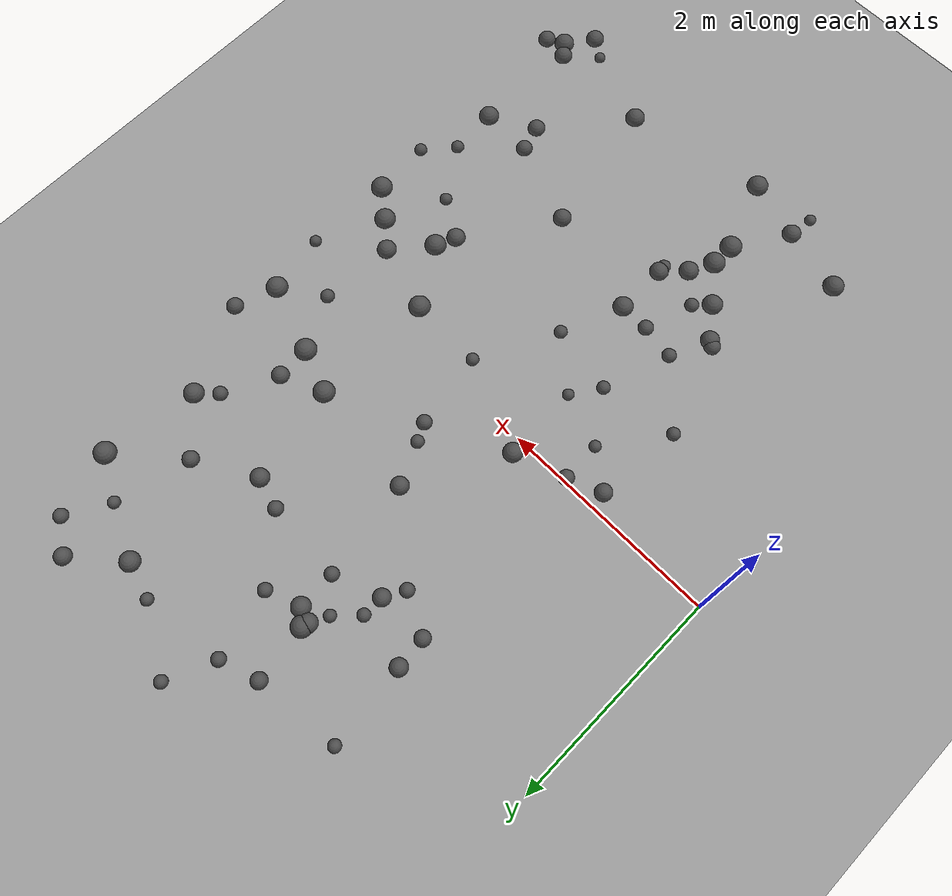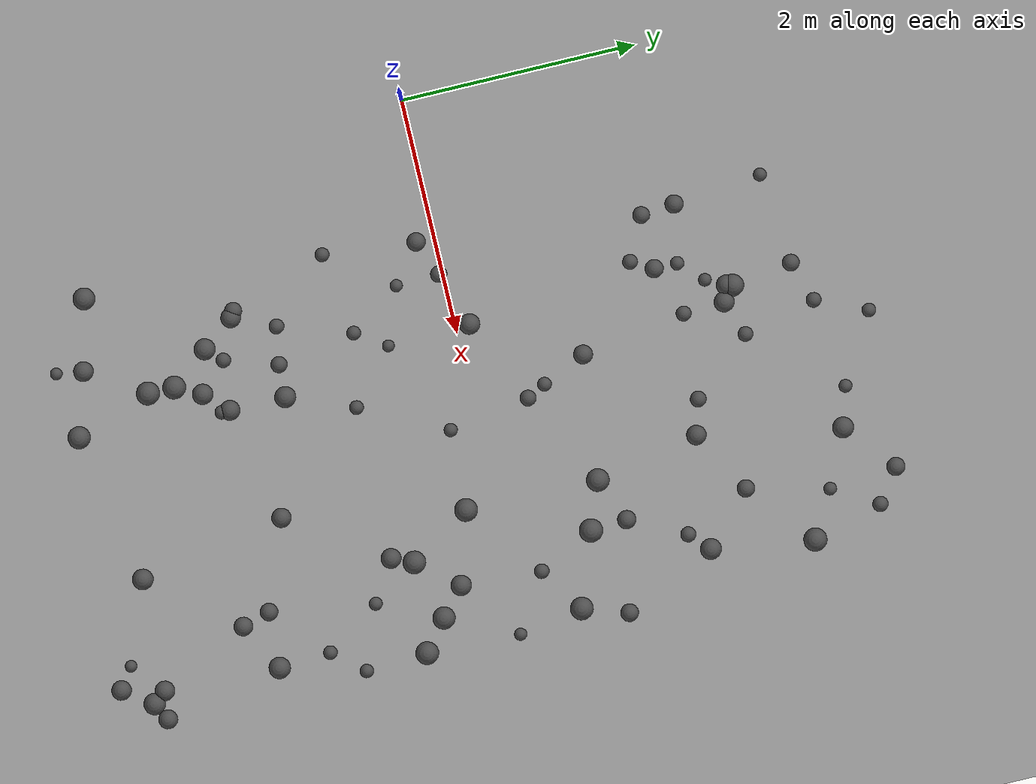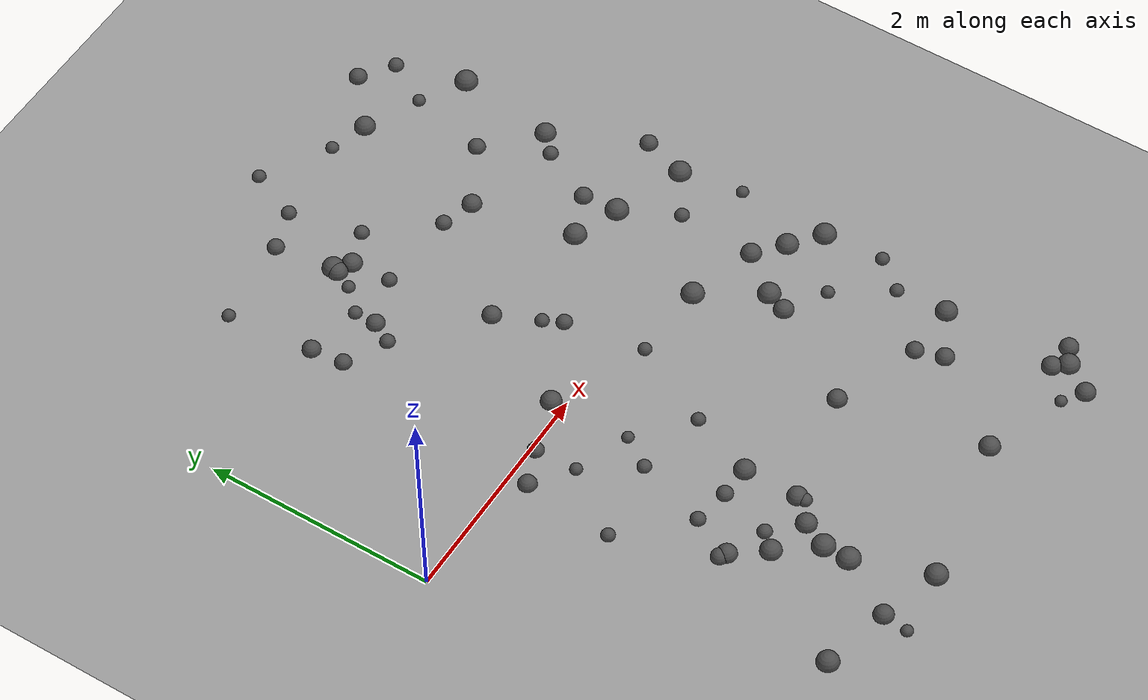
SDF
<sdf version="1.8">
 <world name="bumpy_world">
  <model name="ground_plane">
   <static>true</static>
   <link name="link">
    <collision name="collision">
     <geometry><plane><normal>0 0 1</normal><size>100 100</size></plane></geometry>
    </collision>
    <visual name="visual">
     <geometry><plane><normal>0 0 1</normal><size>100 100</size></plane></geometry>
     <material><ambient>0.6 0.6 0.6 1</ambient><diffuse>0.6 0.6 0.6 1</diffuse></material>
    </visual>
   </link>
  </model>
  <model name="bump_1">
   <static>true</static>
   <pose>4.375699444359473 -2.0842353457720866 0.0 0 0 0</pose>
   <link name="link">
    <collision name="collision">
     <geometry><sphere><radius>0.09185490365605613</radius></sphere></geometry>
     <surface><friction><ode><mu>100.0</mu><mu2>100.0</mu2></ode></friction></surface>
    </collision>
    <visual name="visual">
     <geometry><sphere><radius>0.09185490365605613</radius></sphere></geometry>
     <material><ambient>0.3 0.3 0.3 1</ambient><diffuse>0.3 0.3 0.3 1</diffuse></material>
    </visual>
   </link>
  </model>
  <model name="bump_7">
   <static>true</static>
   <pose>4.578840665991967 -3.0889073012254835 0.0 0 0 0</pose>
   <link name="link">
    <collision name="collision">
     <geometry><sphere><radius>0.08110118816827837</radius></sphere></geometry>
     <surface><friction><ode><mu>100.0</mu><mu2>100.0</mu2></ode></friction></surface>
    </collision>
    <visual name="visual">
     <geometry><sphere><radius>0.08110118816827837</radius></sphere></geometry>
     <material><ambient>0.3 0.3 0.3 1</ambient><diffuse>0.3 0.3 0.3 1</diffuse></material>
    </visual>
   </link>
  </model>
  <model name="bump_11">
   <static>true</static>
   <pose>2.9970924430199055 1.83390502286999 0.0 0 0 0</pose>
   <link name="link">
    <collision name="collision">
     <geometry><sphere><radius>0.06836493312915833</radius></sphere></geometry>
     <surface><friction><ode><mu>100.0</mu><mu2>100.0</mu2></ode></friction></surface>
    </collision>
    <visual name="visual">
     <geometry><sphere><radius>0.06836493312915833</radius></sphere></geometry>
     <material><ambient>0.3 0.3 0.3 1</ambient><diffuse>0.3 0.3 0.3 1</diffuse></material>
    </visual>
   </link>
  </model>
  <model name="bump_13">
   <static>true</static>
   <pose>4.428357708878181 -3.169123840835509 0.0 0 0 0</pose>
   <link name="link">
    <collision name="collision">
     <geometry><sphere><radius>0.09192973632237827</radius></sphere></geometry>
     <surface><friction><ode><mu>100.0</mu><mu2>100.0</mu2></ode></friction></surface>
    </collision>
    <visual name="visual">
     <geometry><sphere><radius>0.09192973632237827</radius></sphere></geometry>
     <material><ambient>0.3 0.3 0.3 1</ambient><diffuse>0.3 0.3 0.3 1</diffuse></material>
    </visual>
   </link>
  </model>
  <model name="bump_15">
   <static>true</static>
   <pose>2.5594423021961528 2.342710506935444 0.0 0 0 0</pose>
   <link name="link">
    <collision name="collision">
     <geometry><sphere><radius>0.06365721138681198</radius></sphere></geometry>
     <surface><friction><ode><mu>100.0</mu><mu2>100.0</mu2></ode></friction></surface>
    </collision>
    <visual name="visual">
     <geometry><sphere><radius>0.06365721138681198</radius></sphere></geometry>
     <material><ambient>0.3 0.3 0.3 1</ambient><diffuse>0.3 0.3 0.3 1</diffuse></material>
    </visual>
   </link>
  </model>
  <model name="bump_17">
   <static>true</static>
   <pose>3.4514245521246463 -0.26661385392774495 0.0 0 0 0</pose>
   <link name="link">
    <collision name="collision">
     <geometry><sphere><radius>0.09747261459395384</radius></sphere></geometry>
     <surface><friction><ode><mu>100.0</mu><mu2>100.0</mu2></ode></friction></surface>
    </collision>
    <visual name="visual">
     <geometry><sphere><radius>0.09747261459395384</radius></sphere></geometry>
     <material><ambient>0.3 0.3 0.3 1</ambient><diffuse>0.3 0.3 0.3 1</diffuse></material>
    </visual>
   </link>
  </model>
  <model name="bump_19">
   <static>true</static>
   <pose>3.1600458979560577 -1.781941884311565 0.0 0 0 0</pose>
   <link name="link">
    <collision name="collision">
     <geometry><sphere><radius>0.08271994072516169</radius></sphere></geometry>
     <surface><friction><ode><mu>100.0</mu><mu2>100.0</mu2></ode></friction></surface>
    </collision>
    <visual name="visual">
     <geometry><sphere><radius>0.08271994072516169</radius></sphere></geometry>
     <material><ambient>0.3 0.3 0.3 1</ambient><diffuse>0.3 0.3 0.3 1</diffuse></material>
    </visual>
   </link>
  </model>
  <model name="bump_20">
   <static>true</static>
   <pose>4.474462683840456 0.4849099776785515 0.0 0 0 0</pose>
   <link name="link">
    <collision name="collision">
     <geometry><sphere><radius>0.0968737511445553</radius></sphere></geometry>
     <surface><friction><ode><mu>100.0</mu><mu2>100.0</mu2></ode></friction></surface>
    </collision>
    <visual name="visual">
     <geometry><sphere><radius>0.0968737511445553</radius></sphere></geometry>
     <material><ambient>0.3 0.3 0.3 1</ambient><diffuse>0.3 0.3 0.3 1</diffuse></material>
    </visual>
   </link>
  </model>
  <model name="bump_28">
   <static>true</static>
   <pose>2.6015680022302448 3.391294897895473 0.0 0 0 0</pose>
   <link name="link">
    <collision name="collision">
     <geometry><sphere><radius>0.058801889831425466</radius></sphere></geometry>
     <surface><friction><ode><mu>100.0</mu><mu2>100.0</mu2></ode></friction></surface>
    </collision>
    <visual name="visual">
     <geometry><sphere><radius>0.058801889831425466</radius></sphere></geometry>
     <material><ambient>0.3 0.3 0.3 1</ambient><diffuse>0.3 0.3 0.3 1</diffuse></material>
    </visual>
   </link>
  </model>
  <model name="bump_33">
   <static>true</static>
   <pose>3.77704697894142 -0.7873846618750808 0.0 0 0 0</pose>
   <link name="link">
    <collision name="collision">
     <geometry><sphere><radius>0.09693993984139813</radius></sphere></geometry>
     <surface><friction><ode><mu>100.0</mu><mu2>100.0</mu2></ode></friction></surface>
    </collision>
    <visual name="visual">
     <geometry><sphere><radius>0.09693993984139813</radius></sphere></geometry>
     <material><ambient>0.3 0.3 0.3 1</ambient><diffuse>0.3 0.3 0.3 1</diffuse></material>
    </visual>
   </link>
  </model>
  <model name="bump_45">
   <static>true</static>
   <pose>4.539434740777375 -0.8569614264850611 0.0 0 0 0</pose>
   <link name="link">
    <collision name="collision">
     <geometry><sphere><radius>0.09726638559245274</radius></sphere></geometry>
     <surface><friction><ode><mu>100.0</mu><mu2>100.0</mu2></ode></friction></surface>
    </collision>
    <visual name="visual">
     <geometry><sphere><radius>0.09726638559245274</radius></sphere></geometry>
     <material><ambient>0.3 0.3 0.3 1</ambient><diffuse>0.3 0.3 0.3 1</diffuse></material>
    </visual>
   </link>
  </model>
  <model name="bump_50">
   <static>true</static>
   <pose>3.858306326417391 0.7095792104071936 0.0 0 0 0</pose>
   <link name="link">
    <collision name="collision">
     <geometry><sphere><radius>0.09963918217281403</radius></sphere></geometry>
     <surface><friction><ode><mu>100.0</mu><mu2>100.0</mu2></ode></friction></surface>
    </collision>
    <visual name="visual">
     <geometry><sphere><radius>0.09963918217281403</radius></sphere></geometry>
     <material><ambient>0.3 0.3 0.3 1</ambient><diffuse>0.3 0.3 0.3 1</diffuse></material>
    </visual>
   </link>
  </model>
  <model name="bump_52">
   <static>true</static>
   <pose>1.7689268516161496 -1.9510097502811679 0.0 0 0 0</pose>
   <link name="link">
    <collision name="collision">
     <geometry><sphere><radius>0.06264346534399169</radius></sphere></geometry>
     <surface><friction><ode><mu>100.0</mu><mu2>100.0</mu2></ode></friction></surface>
    </collision>
    <visual name="visual">
     <geometry><sphere><radius>0.06264346534399169</radius></sphere></geometry>
     <material><ambient>0.3 0.3 0.3 1</ambient><diffuse>0.3 0.3 0.3 1</diffuse></material>
    </visual>
   </link>
  </model>
  <model name="bump_53">
   <static>true</static>
   <pose>4.254398319180079 -3.412807127269019 0.0 0 0 0</pose>
   <link name="link">
    <collision name="collision">
     <geometry><sphere><radius>0.08389991183557605</radius></sphere></geometry>
     <surface><friction><ode><mu>100.0</mu><mu2>100.0</mu2></ode></friction></surface>
    </collision>
    <visual name="visual">
     <geometry><sphere><radius>0.08389991183557605</radius></sphere></geometry>
     <material><ambient>0.3 0.3 0.3 1</ambient><diffuse>0.3 0.3 0.3 1</diffuse></material>
    </visual>
   </link>
  </model>
  <model name="bump_61">
   <static>true</static>
   <pose>2.1240586659767433 2.2813314408419876 0.0 0 0 0</pose>
   <link name="link">
    <collision name="collision">
     <geometry><sphere><radius>0.08591172824293025</radius></sphere></geometry>
     <surface><friction><ode><mu>100.0</mu><mu2>100.0</mu2></ode></friction></surface>
    </collision>
    <visual name="visual">
     <geometry><sphere><radius>0.08591172824293025</radius></sphere></geometry>
     <material><ambient>0.3 0.3 0.3 1</ambient><diffuse>0.3 0.3 0.3 1</diffuse></material>
    </visual>
   </link>
  </model>
  <model name="bump_68">
   <static>true</static>
   <pose>1.895110308128082 -2.402694578252322 0.0 0 0 0</pose>
   <link name="link">
    <collision name="collision">
     <geometry><sphere><radius>0.09760392777575799</radius></sphere></geometry>
     <surface><friction><ode><mu>100.0</mu><mu2>100.0</mu2></ode></friction></surface>
    </collision>
    <visual name="visual">
     <geometry><sphere><radius>0.09760392777575799</radius></sphere></geometry>
     <material><ambient>0.3 0.3 0.3 1</ambient><diffuse>0.3 0.3 0.3 1</diffuse></material>
    </visual>
   </link>
  </model>
  <model name="bump_70">
   <static>true</static>
   <pose>1.1779168991081241 -0.15720439532591568 0.0 0 0 0</pose>
   <link name="link">
    <collision name="collision">
     <geometry><sphere><radius>0.07890660736814643</radius></sphere></geometry>
     <surface><friction><ode><mu>100.0</mu><mu2>100.0</mu2></ode></friction></surface>
    </collision>
    <visual name="visual">
     <geometry><sphere><radius>0.07890660736814643</radius></sphere></geometry>
     <material><ambient>0.3 0.3 0.3 1</ambient><diffuse>0.3 0.3 0.3 1</diffuse></material>
    </visual>
   </link>
  </model>
  <model name="bump_77">
   <static>true</static>
   <pose>1.3862601269019228 -1.7770314376125618 0.0 0 0 0</pose>
   <link name="link">
    <collision name="collision">
     <geometry><sphere><radius>0.07340652317562843</radius></sphere></geometry>
     <surface><friction><ode><mu>100.0</mu><mu2>100.0</mu2></ode></friction></surface>
    </collision>
    <visual name="visual">
     <geometry><sphere><radius>0.07340652317562843</radius></sphere></geometry>
     <material><ambient>0.3 0.3 0.3 1</ambient><diffuse>0.3 0.3 0.3 1</diffuse></material>
    </visual>
   </link>
  </model>
  <model name="bump_89">
   <static>true</static>
   <pose>1.0021155987069834 -2.9658817439445664 0.0 0 0 0</pose>
   <link name="link">
    <collision name="collision">
     <geometry><sphere><radius>0.09338512108883554</radius></sphere></geometry>
     <surface><friction><ode><mu>100.0</mu><mu2>100.0</mu2></ode></friction></surface>
    </collision>
    <visual name="visual">
     <geometry><sphere><radius>0.09338512108883554</radius></sphere></geometry>
     <material><ambient>0.3 0.3 0.3 1</ambient><diffuse>0.3 0.3 0.3 1</diffuse></material>
    </visual>
   </link>
  </model>
  <model name="bump_91">
   <static>true</static>
   <pose>3.2856701817967826 1.7495291228224845 0.0 0 0 0</pose>
   <link name="link">
    <collision name="collision">
     <geometry><sphere><radius>0.0839283965818422</radius></sphere></geometry>
     <surface><friction><ode><mu>100.0</mu><mu2>100.0</mu2></ode></friction></surface>
    </collision>
    <visual name="visual">
     <geometry><sphere><radius>0.0839283965818422</radius></sphere></geometry>
     <material><ambient>0.3 0.3 0.3 1</ambient><diffuse>0.3 0.3 0.3 1</diffuse></material>
    </visual>
   </link>
  </model>
  <model name="bump_92">
   <static>true</static>
   <pose>4.076697194514218 1.4930609313248215 0.0 0 0 0</pose>
   <link name="link">
    <collision name="collision">
     <geometry><sphere><radius>0.06502122167447753</radius></sphere></geometry>
     <surface><friction><ode><mu>100.0</mu><mu2>100.0</mu2></ode></friction></surface>
    </collision>
    <visual name="visual">
     <geometry><sphere><radius>0.06502122167447753</radius></sphere></geometry>
     <material><ambient>0.3 0.3 0.3 1</ambient><diffuse>0.3 0.3 0.3 1</diffuse></material>
    </visual>
   </link>
  </model>
  <model name="bump_93">
   <static>true</static>
   <pose>1.6432416634728013 -2.081651068460677 0.0 0 0 0</pose>
   <link name="link">
    <collision name="collision">
     <geometry><sphere><radius>0.09039176193333547</radius></sphere></geometry>
     <surface><friction><ode><mu>100.0</mu><mu2>100.0</mu2></ode></friction></surface>
    </collision>
    <visual name="visual">
     <geometry><sphere><radius>0.09039176193333547</radius></sphere></geometry>
     <material><ambient>0.3 0.3 0.3 1</ambient><diffuse>0.3 0.3 0.3 1</diffuse></material>
    </visual>
   </link>
  </model>
  <model name="bump_96">
   <static>true</static>
   <pose>3.924195391363507 3.310118237415325 0.0 0 0 0</pose>
   <link name="link">
    <collision name="collision">
     <geometry><sphere><radius>0.07738742257550393</radius></sphere></geometry>
     <surface><friction><ode><mu>100.0</mu><mu2>100.0</mu2></ode></friction></surface>
    </collision>
    <visual name="visual">
     <geometry><sphere><radius>0.07738742257550393</radius></sphere></geometry>
     <material><ambient>0.3 0.3 0.3 1</ambient><diffuse>0.3 0.3 0.3 1</diffuse></material>
    </visual>
   </link>
  </model>
  <model name="bump_106">
   <static>true</static>
   <pose>1.4957432243539166 -0.4024424237970363 0.0 0 0 0</pose>
   <link name="link">
    <collision name="collision">
     <geometry><sphere><radius>0.05353937410705956</radius></sphere></geometry>
     <surface><friction><ode><mu>100.0</mu><mu2>100.0</mu2></ode></friction></surface>
    </collision>
    <visual name="visual">
     <geometry><sphere><radius>0.05353937410705956</radius></sphere></geometry>
     <material><ambient>0.3 0.3 0.3 1</ambient><diffuse>0.3 0.3 0.3 1</diffuse></material>
    </visual>
   </link>
  </model>
  <model name="bump_110">
   <static>true</static>
   <pose>4.286193023977032 -0.6532370426727709 0.0 0 0 0</pose>
   <link name="link">
    <collision name="collision">
     <geometry><sphere><radius>0.0952368700019625</radius></sphere></geometry>
     <surface><friction><ode><mu>100.0</mu><mu2>100.0</mu2></ode></friction></surface>
    </collision>
    <visual name="visual">
     <geometry><sphere><radius>0.0952368700019625</radius></sphere></geometry>
     <material><ambient>0.3 0.3 0.3 1</ambient><diffuse>0.3 0.3 0.3 1</diffuse></material>
    </visual>
   </link>
  </model>
  <model name="bump_111">
   <static>true</static>
   <pose>3.700664339047383 -0.9688204387759534 0.0 0 0 0</pose>
   <link name="link">
    <collision name="collision">
     <geometry><sphere><radius>0.08506161954053865</radius></sphere></geometry>
     <surface><friction><ode><mu>100.0</mu><mu2>100.0</mu2></ode></friction></surface>
    </collision>
    <visual name="visual">
     <geometry><sphere><radius>0.08506161954053865</radius></sphere></geometry>
     <material><ambient>0.3 0.3 0.3 1</ambient><diffuse>0.3 0.3 0.3 1</diffuse></material>
    </visual>
   </link>
  </model>
  <model name="bump_112">
   <static>true</static>
   <pose>3.8380158701605858 1.020428659809773 0.0 0 0 0</pose>
   <link name="link">
    <collision name="collision">
     <geometry><sphere><radius>0.07877720319006354</radius></sphere></geometry>
     <surface><friction><ode><mu>100.0</mu><mu2>100.0</mu2></ode></friction></surface>
    </collision>
    <visual name="visual">
     <geometry><sphere><radius>0.07877720319006354</radius></sphere></geometry>
     <material><ambient>0.3 0.3 0.3 1</ambient><diffuse>0.3 0.3 0.3 1</diffuse></material>
    </visual>
   </link>
  </model>
  <model name="bump_117">
   <static>true</static>
   <pose>2.004968903910231 -2.183889137007635 0.0 0 0 0</pose>
   <link name="link">
    <collision name="collision">
     <geometry><sphere><radius>0.08747017050530548</radius></sphere></geometry>
     <surface><friction><ode><mu>100.0</mu><mu2>100.0</mu2></ode></friction></surface>
    </collision>
    <visual name="visual">
     <geometry><sphere><radius>0.08747017050530548</radius></sphere></geometry>
     <material><ambient>0.3 0.3 0.3 1</ambient><diffuse>0.3 0.3 0.3 1</diffuse></material>
    </visual>
   </link>
  </model>
  <model name="bump_120">
   <static>true</static>
   <pose>1.5583464712921327 -3.3345063218413413 0.0 0 0 0</pose>
   <link name="link">
    <collision name="collision">
     <geometry><sphere><radius>0.05113216974689665</radius></sphere></geometry>
     <surface><friction><ode><mu>100.0</mu><mu2>100.0</mu2></ode></friction></surface>
    </collision>
    <visual name="visual">
     <geometry><sphere><radius>0.05113216974689665</radius></sphere></geometry>
     <material><ambient>0.3 0.3 0.3 1</ambient><diffuse>0.3 0.3 0.3 1</diffuse></material>
    </visual>
   </link>
  </model>
  <model name="bump_122">
   <static>true</static>
   <pose>1.4388011884753715 -1.8104549754337258 0.0 0 0 0</pose>
   <link name="link">
    <collision name="collision">
     <geometry><sphere><radius>0.08423392261380672</radius></sphere></geometry>
     <surface><friction><ode><mu>100.0</mu><mu2>100.0</mu2></ode></friction></surface>
    </collision>
    <visual name="visual">
     <geometry><sphere><radius>0.08423392261380672</radius></sphere></geometry>
     <material><ambient>0.3 0.3 0.3 1</ambient><diffuse>0.3 0.3 0.3 1</diffuse></material>
    </visual>
   </link>
  </model>
  <model name="bump_125">
   <static>true</static>
   <pose>3.461714171851522 0.8616076185449426 0.0 0 0 0</pose>
   <link name="link">
    <collision name="collision">
     <geometry><sphere><radius>0.09703947010925909</radius></sphere></geometry>
     <surface><friction><ode><mu>100.0</mu><mu2>100.0</mu2></ode></friction></surface>
    </collision>
    <visual name="visual">
     <geometry><sphere><radius>0.09703947010925909</radius></sphere></geometry>
     <material><ambient>0.3 0.3 0.3 1</ambient><diffuse>0.3 0.3 0.3 1</diffuse></material>
    </visual>
   </link>
  </model>
  <model name="bump_128">
   <static>true</static>
   <pose>2.5806657441793446 0.6127622393420067 0.0 0 0 0</pose>
   <link name="link">
    <collision name="collision">
     <geometry><sphere><radius>0.059684126076175514</radius></sphere></geometry>
     <surface><friction><ode><mu>100.0</mu><mu2>100.0</mu2></ode></friction></surface>
    </collision>
    <visual name="visual">
     <geometry><sphere><radius>0.059684126076175514</radius></sphere></geometry>
     <material><ambient>0.3 0.3 0.3 1</ambient><diffuse>0.3 0.3 0.3 1</diffuse></material>
    </visual>
   </link>
  </model>
  <model name="bump_131">
   <static>true</static>
   <pose>4.039163697475373 -1.180683140473001 0.0 0 0 0</pose>
   <link name="link">
    <collision name="collision">
     <geometry><sphere><radius>0.05633555211848901</radius></sphere></geometry>
     <surface><friction><ode><mu>100.0</mu><mu2>100.0</mu2></ode></friction></surface>
    </collision>
    <visual name="visual">
     <geometry><sphere><radius>0.05633555211848901</radius></sphere></geometry>
     <material><ambient>0.3 0.3 0.3 1</ambient><diffuse>0.3 0.3 0.3 1</diffuse></material>
    </visual>
   </link>
  </model>
  <model name="bump_138">
   <static>true</static>
   <pose>4.348922720831991 -1.6428241987065857 0.0 0 0 0</pose>
   <link name="link">
    <collision name="collision">
     <geometry><sphere><radius>0.059049114572111504</radius></sphere></geometry>
     <surface><friction><ode><mu>100.0</mu><mu2>100.0</mu2></ode></friction></surface>
    </collision>
    <visual name="visual">
     <geometry><sphere><radius>0.059049114572111504</radius></sphere></geometry>
     <material><ambient>0.3 0.3 0.3 1</ambient><diffuse>0.3 0.3 0.3 1</diffuse></material>
    </visual>
   </link>
  </model>
  <model name="bump_150">
   <static>true</static>
   <pose>2.4132175010626975 2.9622652706319617 0.0 0 0 0</pose>
   <link name="link">
    <collision name="collision">
     <geometry><sphere><radius>0.06385747610882556</radius></sphere></geometry>
     <surface><friction><ode><mu>100.0</mu><mu2>100.0</mu2></ode></friction></surface>
    </collision>
    <visual name="visual">
     <geometry><sphere><radius>0.06385747610882556</radius></sphere></geometry>
     <material><ambient>0.3 0.3 0.3 1</ambient><diffuse>0.3 0.3 0.3 1</diffuse></material>
    </visual>
   </link>
  </model>
  <model name="bump_154">
   <static>true</static>
   <pose>4.568136714132531 -1.3819790478039544 0.0 0 0 0</pose>
   <link name="link">
    <collision name="collision">
     <geometry><sphere><radius>0.058123281968035685</radius></sphere></geometry>
     <surface><friction><ode><mu>100.0</mu><mu2>100.0</mu2></ode></friction></surface>
    </collision>
    <visual name="visual">
     <geometry><sphere><radius>0.058123281968035685</radius></sphere></geometry>
     <material><ambient>0.3 0.3 0.3 1</ambient><diffuse>0.3 0.3 0.3 1</diffuse></material>
    </visual>
   </link>
  </model>
  <model name="bump_155">
   <static>true</static>
   <pose>4.199464133943113 3.112736147962802 0.0 0 0 0</pose>
   <link name="link">
    <collision name="collision">
     <geometry><sphere><radius>0.06563378905503567</radius></sphere></geometry>
     <surface><friction><ode><mu>100.0</mu><mu2>100.0</mu2></ode></friction></surface>
    </collision>
    <visual name="visual">
     <geometry><sphere><radius>0.06563378905503567</radius></sphere></geometry>
     <material><ambient>0.3 0.3 0.3 1</ambient><diffuse>0.3 0.3 0.3 1</diffuse></material>
    </visual>
   </link>
  </model>
  <model name="bump_167">
   <static>true</static>
   <pose>2.4129315126376136 0.9834948914557646 0.0 0 0 0</pose>
   <link name="link">
    <collision name="collision">
     <geometry><sphere><radius>0.08116782528962042</radius></sphere></geometry>
     <surface><friction><ode><mu>100.0</mu><mu2>100.0</mu2></ode></friction></surface>
    </collision>
    <visual name="visual">
     <geometry><sphere><radius>0.08116782528962042</radius></sphere></geometry>
     <material><ambient>0.3 0.3 0.3 1</ambient><diffuse>0.3 0.3 0.3 1</diffuse></material>
    </visual>
   </link>
  </model>
  <model name="bump_175">
   <static>true</static>
   <pose>3.969476179154804 -2.299922323500769 0.0 0 0 0</pose>
   <link name="link">
    <collision name="collision">
     <geometry><sphere><radius>0.08000740386089103</radius></sphere></geometry>
     <surface><friction><ode><mu>100.0</mu><mu2>100.0</mu2></ode></friction></surface>
    </collision>
    <visual name="visual">
     <geometry><sphere><radius>0.08000740386089103</radius></sphere></geometry>
     <material><ambient>0.3 0.3 0.3 1</ambient><diffuse>0.3 0.3 0.3 1</diffuse></material>
    </visual>
   </link>
  </model>
  <model name="bump_184">
   <static>true</static>
   <pose>4.076243498073411 -3.2892042625045073 0.0 0 0 0</pose>
   <link name="link">
    <collision name="collision">
     <geometry><sphere><radius>0.05064184781696207</radius></sphere></geometry>
     <surface><friction><ode><mu>100.0</mu><mu2>100.0</mu2></ode></friction></surface>
    </collision>
    <visual name="visual">
     <geometry><sphere><radius>0.05064184781696207</radius></sphere></geometry>
     <material><ambient>0.3 0.3 0.3 1</ambient><diffuse>0.3 0.3 0.3 1</diffuse></material>
    </visual>
   </link>
  </model>
  <model name="bump_192">
   <static>true</static>
   <pose>1.9692239462584986 -0.5818824380333378 0.0 0 0 0</pose>
   <link name="link">
    <collision name="collision">
     <geometry><sphere><radius>0.05152467601049409</radius></sphere></geometry>
     <surface><friction><ode><mu>100.0</mu><mu2>100.0</mu2></ode></friction></surface>
    </collision>
    <visual name="visual">
     <geometry><sphere><radius>0.05152467601049409</radius></sphere></geometry>
     <material><ambient>0.3 0.3 0.3 1</ambient><diffuse>0.3 0.3 0.3 1</diffuse></material>
    </visual>
   </link>
  </model>
  <model name="bump_194">
   <static>true</static>
   <pose>2.274350186918129 1.8790987773009595 0.0 0 0 0</pose>
   <link name="link">
    <collision name="collision">
     <geometry><sphere><radius>0.06426086629552348</radius></sphere></geometry>
     <surface><friction><ode><mu>100.0</mu><mu2>100.0</mu2></ode></friction></surface>
    </collision>
    <visual name="visual">
     <geometry><sphere><radius>0.06426086629552348</radius></sphere></geometry>
     <material><ambient>0.3 0.3 0.3 1</ambient><diffuse>0.3 0.3 0.3 1</diffuse></material>
    </visual>
   </link>
  </model>
  <model name="bump_195">
   <static>true</static>
   <pose>1.910686969388247 -1.5066384400249864 0.0 0 0 0</pose>
   <link name="link">
    <collision name="collision">
     <geometry><sphere><radius>0.06949781036975047</radius></sphere></geometry>
     <surface><friction><ode><mu>100.0</mu><mu2>100.0</mu2></ode></friction></surface>
    </collision>
    <visual name="visual">
     <geometry><sphere><radius>0.06949781036975047</radius></sphere></geometry>
     <material><ambient>0.3 0.3 0.3 1</ambient><diffuse>0.3 0.3 0.3 1</diffuse></material>
    </visual>
   </link>
  </model>
  <model name="bump_199">
   <static>true</static>
   <pose>4.599999971293138 0.8655849694266049 0.0 0 0 0</pose>
   <link name="link">
    <collision name="collision">
     <geometry><sphere><radius>0.07590621753262201</radius></sphere></geometry>
     <surface><friction><ode><mu>100.0</mu><mu2>100.0</mu2></ode></friction></surface>
    </collision>
    <visual name="visual">
     <geometry><sphere><radius>0.07590621753262201</radius></sphere></geometry>
     <material><ambient>0.3 0.3 0.3 1</ambient><diffuse>0.3 0.3 0.3 1</diffuse></material>
    </visual>
   </link>
  </model>
  <model name="bump_209">
   <static>true</static>
   <pose>4.565712070276136 -0.061086823381995004 0.0 0 0 0</pose>
   <link name="link">
    <collision name="collision">
     <geometry><sphere><radius>0.05308663068465542</radius></sphere></geometry>
     <surface><friction><ode><mu>100.0</mu><mu2>100.0</mu2></ode></friction></surface>
    </collision>
    <visual name="visual">
     <geometry><sphere><radius>0.05308663068465542</radius></sphere></geometry>
     <material><ambient>0.3 0.3 0.3 1</ambient><diffuse>0.3 0.3 0.3 1</diffuse></material>
    </visual>
   </link>
  </model>
  <model name="bump_216">
   <static>true</static>
   <pose>3.3934069150763437 -3.026409996238849 0.0 0 0 0</pose>
   <link name="link">
    <collision name="collision">
     <geometry><sphere><radius>0.0883871119067178</radius></sphere></geometry>
     <surface><friction><ode><mu>100.0</mu><mu2>100.0</mu2></ode></friction></surface>
    </collision>
    <visual name="visual">
     <geometry><sphere><radius>0.0883871119067178</radius></sphere></geometry>
     <material><ambient>0.3 0.3 0.3 1</ambient><diffuse>0.3 0.3 0.3 1</diffuse></material>
    </visual>
   </link>
  </model>
  <model name="bump_222">
   <static>true</static>
   <pose>3.978788970925378 2.733991939575062 0.0 0 0 0</pose>
   <link name="link">
    <collision name="collision">
     <geometry><sphere><radius>0.05514276154717635</radius></sphere></geometry>
     <surface><friction><ode><mu>100.0</mu><mu2>100.0</mu2></ode></friction></surface>
    </collision>
    <visual name="visual">
     <geometry><sphere><radius>0.05514276154717635</radius></sphere></geometry>
     <material><ambient>0.3 0.3 0.3 1</ambient><diffuse>0.3 0.3 0.3 1</diffuse></material>
    </visual>
   </link>
  </model>
  <model name="bump_223">
   <static>true</static>
   <pose>1.8530006469394462 1.7263403156220845 0.0 0 0 0</pose>
   <link name="link">
    <collision name="collision">
     <geometry><sphere><radius>0.07804164524318333</radius></sphere></geometry>
     <surface><friction><ode><mu>100.0</mu><mu2>100.0</mu2></ode></friction></surface>
    </collision>
    <visual name="visual">
     <geometry><sphere><radius>0.07804164524318333</radius></sphere></geometry>
     <material><ambient>0.3 0.3 0.3 1</ambient><diffuse>0.3 0.3 0.3 1</diffuse></material>
    </visual>
   </link>
  </model>
  <model name="bump_227">
   <static>true</static>
   <pose>1.7986888438597968 -0.8392956477624267 0.0 0 0 0</pose>
   <link name="link">
    <collision name="collision">
     <geometry><sphere><radius>0.0600062816787166</radius></sphere></geometry>
     <surface><friction><ode><mu>100.0</mu><mu2>100.0</mu2></ode></friction></surface>
    </collision>
    <visual name="visual">
     <geometry><sphere><radius>0.0600062816787166</radius></sphere></geometry>
     <material><ambient>0.3 0.3 0.3 1</ambient><diffuse>0.3 0.3 0.3 1</diffuse></material>
    </visual>
   </link>
  </model>
  <model name="bump_234">
   <static>true</static>
   <pose>2.137808510476818 2.3323954395839603 0.0 0 0 0</pose>
   <link name="link">
    <collision name="collision">
     <geometry><sphere><radius>0.0940554020404818</radius></sphere></geometry>
     <surface><friction><ode><mu>100.0</mu><mu2>100.0</mu2></ode></friction></surface>
    </collision>
    <visual name="visual">
     <geometry><sphere><radius>0.0940554020404818</radius></sphere></geometry>
     <material><ambient>0.3 0.3 0.3 1</ambient><diffuse>0.3 0.3 0.3 1</diffuse></material>
    </visual>
   </link>
  </model>
  <model name="bump_237">
   <static>true</static>
   <pose>4.363261361209745 2.5155210417472427 0.0 0 0 0</pose>
   <link name="link">
    <collision name="collision">
     <geometry><sphere><radius>0.09899612223260706</radius></sphere></geometry>
     <surface><friction><ode><mu>100.0</mu><mu2>100.0</mu2></ode></friction></surface>
    </collision>
    <visual name="visual">
     <geometry><sphere><radius>0.09899612223260706</radius></sphere></geometry>
     <material><ambient>0.3 0.3 0.3 1</ambient><diffuse>0.3 0.3 0.3 1</diffuse></material>
    </visual>
   </link>
  </model>
  <model name="bump_247">
   <static>true</static>
   <pose>1.3660981159422647 2.01146068688438 0.0 0 0 0</pose>
   <link name="link">
    <collision name="collision">
     <geometry><sphere><radius>0.07840243882581377</radius></sphere></geometry>
     <surface><friction><ode><mu>100.0</mu><mu2>100.0</mu2></ode></friction></surface>
    </collision>
    <visual name="visual">
     <geometry><sphere><radius>0.07840243882581377</radius></sphere></geometry>
     <material><ambient>0.3 0.3 0.3 1</ambient><diffuse>0.3 0.3 0.3 1</diffuse></material>
    </visual>
   </link>
  </model>
  <model name="bump_252">
   <static>true</static>
   <pose>1.8535398435279276 1.9231821006295275 0.0 0 0 0</pose>
   <link name="link">
    <collision name="collision">
     <geometry><sphere><radius>0.0581865849599181</radius></sphere></geometry>
     <surface><friction><ode><mu>100.0</mu><mu2>100.0</mu2></ode></friction></surface>
    </collision>
    <visual name="visual">
     <geometry><sphere><radius>0.0581865849599181</radius></sphere></geometry>
     <material><ambient>0.3 0.3 0.3 1</ambient><diffuse>0.3 0.3 0.3 1</diffuse></material>
    </visual>
   </link>
  </model>
  <model name="bump_255">
   <static>true</static>
   <pose>4.239034731533506 1.6484213552412381 0.0 0 0 0</pose>
   <link name="link">
    <collision name="collision">
     <geometry><sphere><radius>0.08947153125485383</radius></sphere></geometry>
     <surface><friction><ode><mu>100.0</mu><mu2>100.0</mu2></ode></friction></surface>
    </collision>
    <visual name="visual">
     <geometry><sphere><radius>0.08947153125485383</radius></sphere></geometry>
     <material><ambient>0.3 0.3 0.3 1</ambient><diffuse>0.3 0.3 0.3 1</diffuse></material>
    </visual>
   </link>
  </model>
  <model name="bump_258">
   <static>true</static>
   <pose>2.120326441698958 -3.2716248755747666 0.0 0 0 0</pose>
   <link name="link">
    <collision name="collision">
     <geometry><sphere><radius>0.09508106830823276</radius></sphere></geometry>
     <surface><friction><ode><mu>100.0</mu><mu2>100.0</mu2></ode></friction></surface>
    </collision>
    <visual name="visual">
     <geometry><sphere><radius>0.09508106830823276</radius></sphere></geometry>
     <material><ambient>0.3 0.3 0.3 1</ambient><diffuse>0.3 0.3 0.3 1</diffuse></material>
    </visual>
   </link>
  </model>
  <model name="bump_259">
   <static>true</static>
   <pose>1.8931248369139437 -2.6273951459734604 0.0 0 0 0</pose>
   <link name="link">
    <collision name="collision">
     <geometry><sphere><radius>0.098534885662027</radius></sphere></geometry>
     <surface><friction><ode><mu>100.0</mu><mu2>100.0</mu2></ode></friction></surface>
    </collision>
    <visual name="visual">
     <geometry><sphere><radius>0.098534885662027</radius></sphere></geometry>
     <material><ambient>0.3 0.3 0.3 1</ambient><diffuse>0.3 0.3 0.3 1</diffuse></material>
    </visual>
   </link>
  </model>
  <model name="bump_265">
   <static>true</static>
   <pose>2.1882533013893855 -2.063168464321368 0.0 0 0 0</pose>
   <link name="link">
    <collision name="collision">
     <geometry><sphere><radius>0.059202826665562334</radius></sphere></geometry>
     <surface><friction><ode><mu>100.0</mu><mu2>100.0</mu2></ode></friction></surface>
    </collision>
    <visual name="visual">
     <geometry><sphere><radius>0.059202826665562334</radius></sphere></geometry>
     <material><ambient>0.3 0.3 0.3 1</ambient><diffuse>0.3 0.3 0.3 1</diffuse></material>
    </visual>
   </link>
  </model>
  <model name="bump_266">
   <static>true</static>
   <pose>1.591508633747614 -3.1100128239824576 0.0 0 0 0</pose>
   <link name="link">
    <collision name="collision">
     <geometry><sphere><radius>0.0841009147210772</radius></sphere></geometry>
     <surface><friction><ode><mu>100.0</mu><mu2>100.0</mu2></ode></friction></surface>
    </collision>
    <visual name="visual">
     <geometry><sphere><radius>0.0841009147210772</radius></sphere></geometry>
     <material><ambient>0.3 0.3 0.3 1</ambient><diffuse>0.3 0.3 0.3 1</diffuse></material>
    </visual>
   </link>
  </model>
  <model name="bump_271">
   <static>true</static>
   <pose>3.90125391032872 -2.0635050844346936 0.0 0 0 0</pose>
   <link name="link">
    <collision name="collision">
     <geometry><sphere><radius>0.07551922364763364</radius></sphere></geometry>
     <surface><friction><ode><mu>100.0</mu><mu2>100.0</mu2></ode></friction></surface>
    </collision>
    <visual name="visual">
     <geometry><sphere><radius>0.07551922364763364</radius></sphere></geometry>
     <material><ambient>0.3 0.3 0.3 1</ambient><diffuse>0.3 0.3 0.3 1</diffuse></material>
    </visual>
   </link>
  </model>
  <model name="bump_276">
   <static>true</static>
   <pose>1.2920620789178108 2.7661544039332764 0.0 0 0 0</pose>
   <link name="link">
    <collision name="collision">
     <geometry><sphere><radius>0.05636404985219276</radius></sphere></geometry>
     <surface><friction><ode><mu>100.0</mu><mu2>100.0</mu2></ode></friction></surface>
    </collision>
    <visual name="visual">
     <geometry><sphere><radius>0.05636404985219276</radius></sphere></geometry>
     <material><ambient>0.3 0.3 0.3 1</ambient><diffuse>0.3 0.3 0.3 1</diffuse></material>
    </visual>
   </link>
  </model>
  <model name="bump_280">
   <static>true</static>
   <pose>1.9476494498925092 0.11942097470103175 0.0 0 0 0</pose>
   <link name="link">
    <collision name="collision">
     <geometry><sphere><radius>0.0877694846545605</radius></sphere></geometry>
     <surface><friction><ode><mu>100.0</mu><mu2>100.0</mu2></ode></friction></surface>
    </collision>
    <visual name="visual">
     <geometry><sphere><radius>0.0877694846545605</radius></sphere></geometry>
     <material><ambient>0.3 0.3 0.3 1</ambient><diffuse>0.3 0.3 0.3 1</diffuse></material>
    </visual>
   </link>
  </model>
  <model name="bump_281">
   <static>true</static>
   <pose>1.392311178075276 1.7241443622826234 0.0 0 0 0</pose>
   <link name="link">
    <collision name="collision">
     <geometry><sphere><radius>0.07199033590962273</radius></sphere></geometry>
     <surface><friction><ode><mu>100.0</mu><mu2>100.0</mu2></ode></friction></surface>
    </collision>
    <visual name="visual">
     <geometry><sphere><radius>0.07199033590962273</radius></sphere></geometry>
     <material><ambient>0.3 0.3 0.3 1</ambient><diffuse>0.3 0.3 0.3 1</diffuse></material>
    </visual>
   </link>
  </model>
  <model name="bump_285">
   <static>true</static>
   <pose>4.0945524490246585 0.23146863199768086 0.0 0 0 0</pose>
   <link name="link">
    <collision name="collision">
     <geometry><sphere><radius>0.06259131721761399</radius></sphere></geometry>
     <surface><friction><ode><mu>100.0</mu><mu2>100.0</mu2></ode></friction></surface>
    </collision>
    <visual name="visual">
     <geometry><sphere><radius>0.06259131721761399</radius></sphere></geometry>
     <material><ambient>0.3 0.3 0.3 1</ambient><diffuse>0.3 0.3 0.3 1</diffuse></material>
    </visual>
   </link>
  </model>
  <model name="bump_300">
   <static>true</static>
   <pose>2.6611880233919463 0.4529772471411153 0.0 0 0 0</pose>
   <link name="link">
    <collision name="collision">
     <geometry><sphere><radius>0.0684253208329331</radius></sphere></geometry>
     <surface><friction><ode><mu>100.0</mu><mu2>100.0</mu2></ode></friction></surface>
    </collision>
    <visual name="visual">
     <geometry><sphere><radius>0.0684253208329331</radius></sphere></geometry>
     <material><ambient>0.3 0.3 0.3 1</ambient><diffuse>0.3 0.3 0.3 1</diffuse></material>
    </visual>
   </link>
  </model>
  <model name="bump_306">
   <static>true</static>
   <pose>2.041311952065131 2.116944226534015 0.0 0 0 0</pose>
   <link name="link">
    <collision name="collision">
     <geometry><sphere><radius>0.0549868905599191</radius></sphere></geometry>
     <surface><friction><ode><mu>100.0</mu><mu2>100.0</mu2></ode></friction></surface>
    </collision>
    <visual name="visual">
     <geometry><sphere><radius>0.0549868905599191</radius></sphere></geometry>
     <material><ambient>0.3 0.3 0.3 1</ambient><diffuse>0.3 0.3 0.3 1</diffuse></material>
    </visual>
   </link>
  </model>
  <model name="bump_312">
   <static>true</static>
   <pose>2.1864474035284553 -1.5191432739626602 0.0 0 0 0</pose>
   <link name="link">
    <collision name="collision">
     <geometry><sphere><radius>0.08993977917988916</radius></sphere></geometry>
     <surface><friction><ode><mu>100.0</mu><mu2>100.0</mu2></ode></friction></surface>
    </collision>
    <visual name="visual">
     <geometry><sphere><radius>0.08993977917988916</radius></sphere></geometry>
     <material><ambient>0.3 0.3 0.3 1</ambient><diffuse>0.3 0.3 0.3 1</diffuse></material>
    </visual>
   </link>
  </model>
  <model name="bump_313">
   <static>true</static>
   <pose>3.8142321701479807 2.0491257253903052 0.0 0 0 0</pose>
   <link name="link">
    <collision name="collision">
     <geometry><sphere><radius>0.07450894111731637</radius></sphere></geometry>
     <surface><friction><ode><mu>100.0</mu><mu2>100.0</mu2></ode></friction></surface>
    </collision>
    <visual name="visual">
     <geometry><sphere><radius>0.07450894111731637</radius></sphere></geometry>
     <material><ambient>0.3 0.3 0.3 1</ambient><diffuse>0.3 0.3 0.3 1</diffuse></material>
    </visual>
   </link>
  </model>
  <model name="bump_326">
   <static>true</static>
   <pose>3.506261302930917 2.9562766246734835 0.0 0 0 0</pose>
   <link name="link">
    <collision name="collision">
     <geometry><sphere><radius>0.0893239104093423</radius></sphere></geometry>
     <surface><friction><ode><mu>100.0</mu><mu2>100.0</mu2></ode></friction></surface>
    </collision>
    <visual name="visual">
     <geometry><sphere><radius>0.0893239104093423</radius></sphere></geometry>
     <material><ambient>0.3 0.3 0.3 1</ambient><diffuse>0.3 0.3 0.3 1</diffuse></material>
    </visual>
   </link>
  </model>
  <model name="bump_339">
   <static>true</static>
   <pose>1.101379373514014 -0.9455817866318252 0.0 0 0 0</pose>
   <link name="link">
    <collision name="collision">
     <geometry><sphere><radius>0.05970091480681729</radius></sphere></geometry>
     <surface><friction><ode><mu>100.0</mu><mu2>100.0</mu2></ode></friction></surface>
    </collision>
    <visual name="visual">
     <geometry><sphere><radius>0.05970091480681729</radius></sphere></geometry>
     <material><ambient>0.3 0.3 0.3 1</ambient><diffuse>0.3 0.3 0.3 1</diffuse></material>
    </visual>
   </link>
  </model>
  <model name="bump_342">
   <static>true</static>
   <pose>2.066369775269156 2.8482545494954046 0.0 0 0 0</pose>
   <link name="link">
    <collision name="collision">
     <geometry><sphere><radius>0.0725731990171054</radius></sphere></geometry>
     <surface><friction><ode><mu>100.0</mu><mu2>100.0</mu2></ode></friction></surface>
    </collision>
    <visual name="visual">
     <geometry><sphere><radius>0.0725731990171054</radius></sphere></geometry>
     <material><ambient>0.3 0.3 0.3 1</ambient><diffuse>0.3 0.3 0.3 1</diffuse></material>
    </visual>
   </link>
  </model>
  <model name="bump_344">
   <static>true</static>
   <pose>4.341214280540963 -3.0617450193890194 0.0 0 0 0</pose>
   <link name="link">
    <collision name="collision">
     <geometry><sphere><radius>0.08427200827918033</radius></sphere></geometry>
     <surface><friction><ode><mu>100.0</mu><mu2>100.0</mu2></ode></friction></surface>
    </collision>
    <visual name="visual">
     <geometry><sphere><radius>0.08427200827918033</radius></sphere></geometry>
     <material><ambient>0.3 0.3 0.3 1</ambient><diffuse>0.3 0.3 0.3 1</diffuse></material>
    </visual>
   </link>
  </model>
  <model name="bump_351">
   <static>true</static>
   <pose>2.4087114338619573 -0.9592177027053852 0.0 0 0 0</pose>
   <link name="link">
    <collision name="collision">
     <geometry><sphere><radius>0.05952886930317389</radius></sphere></geometry>
     <surface><friction><ode><mu>100.0</mu><mu2>100.0</mu2></ode></friction></surface>
    </collision>
    <visual name="visual">
     <geometry><sphere><radius>0.05952886930317389</radius></sphere></geometry>
     <material><ambient>0.3 0.3 0.3 1</ambient><diffuse>0.3 0.3 0.3 1</diffuse></material>
    </visual>
   </link>
  </model>
  <model name="bump_355">
   <static>true</static>
   <pose>1.7508617585411512 1.5436339763273708 0.0 0 0 0</pose>
   <link name="link">
    <collision name="collision">
     <geometry><sphere><radius>0.0643542454361555</radius></sphere></geometry>
     <surface><friction><ode><mu>100.0</mu><mu2>100.0</mu2></ode></friction></surface>
    </collision>
    <visual name="visual">
     <geometry><sphere><radius>0.0643542454361555</radius></sphere></geometry>
     <material><ambient>0.3 0.3 0.3 1</ambient><diffuse>0.3 0.3 0.3 1</diffuse></material>
    </visual>
   </link>
  </model>
  <model name="bump_366">
   <static>true</static>
   <pose>3.1727568323392688 3.055639781837283 0.0 0 0 0</pose>
   <link name="link">
    <collision name="collision">
     <geometry><sphere><radius>0.05560608570346482</radius></sphere></geometry>
     <surface><friction><ode><mu>100.0</mu><mu2>100.0</mu2></ode></friction></surface>
    </collision>
    <visual name="visual">
     <geometry><sphere><radius>0.05560608570346482</radius></sphere></geometry>
     <material><ambient>0.3 0.3 0.3 1</ambient><diffuse>0.3 0.3 0.3 1</diffuse></material>
    </visual>
   </link>
  </model>
  <model name="bump_370">
   <static>true</static>
   <pose>2.7723588476759655 -0.23769284303312022 0.0 0 0 0</pose>
   <link name="link">
    <collision name="collision">
     <geometry><sphere><radius>0.05740694272523439</radius></sphere></geometry>
     <surface><friction><ode><mu>100.0</mu><mu2>100.0</mu2></ode></friction></surface>
    </collision>
    <visual name="visual">
     <geometry><sphere><radius>0.05740694272523439</radius></sphere></geometry>
     <material><ambient>0.3 0.3 0.3 1</ambient><diffuse>0.3 0.3 0.3 1</diffuse></material>
    </visual>
   </link>
  </model>
  <model name="bump_371">
   <static>true</static>
   <pose>2.1877285848408583 -1.99385632574214 0.0 0 0 0</pose>
   <link name="link">
    <collision name="collision">
     <geometry><sphere><radius>0.08502341327988053</radius></sphere></geometry>
     <surface><friction><ode><mu>100.0</mu><mu2>100.0</mu2></ode></friction></surface>
    </collision>
    <visual name="visual">
     <geometry><sphere><radius>0.08502341327988053</radius></sphere></geometry>
     <material><ambient>0.3 0.3 0.3 1</ambient><diffuse>0.3 0.3 0.3 1</diffuse></material>
    </visual>
   </link>
  </model>
  <model name="bump_374">
   <static>true</static>
   <pose>4.054084608900223 -0.4510651075075631 0.0 0 0 0</pose>
   <link name="link">
    <collision name="collision">
     <geometry><sphere><radius>0.08710496573048518</radius></sphere></geometry>
     <surface><friction><ode><mu>100.0</mu><mu2>100.0</mu2></ode></friction></surface>
    </collision>
    <visual name="visual">
     <geometry><sphere><radius>0.08710496573048518</radius></sphere></geometry>
     <material><ambient>0.3 0.3 0.3 1</ambient><diffuse>0.3 0.3 0.3 1</diffuse></material>
    </visual>
   </link>
  </model>
  <model name="bump_377">
   <static>true</static>
   <pose>1.5959300537671233 -1.454146161855948 0.0 0 0 0</pose>
   <link name="link">
    <collision name="collision">
     <geometry><sphere><radius>0.06401514441020803</radius></sphere></geometry>
     <surface><friction><ode><mu>100.0</mu><mu2>100.0</mu2></ode></friction></surface>
    </collision>
    <visual name="visual">
     <geometry><sphere><radius>0.06401514441020803</radius></sphere></geometry>
     <material><ambient>0.3 0.3 0.3 1</ambient><diffuse>0.3 0.3 0.3 1</diffuse></material>
    </visual>
   </link>
  </model>
  <model name="bump_380">
   <static>true</static>
   <pose>2.2576698778066335 2.230860490960528 0.0 0 0 0</pose>
   <link name="link">
    <collision name="collision">
     <geometry><sphere><radius>0.0856969996865306</radius></sphere></geometry>
     <surface><friction><ode><mu>100.0</mu><mu2>100.0</mu2></ode></friction></surface>
    </collision>
    <visual name="visual">
     <geometry><sphere><radius>0.0856969996865306</radius></sphere></geometry>
     <material><ambient>0.3 0.3 0.3 1</ambient><diffuse>0.3 0.3 0.3 1</diffuse></material>
    </visual>
   </link>
  </model>
  <model name="bump_397">
   <static>true</static>
   <pose>1.4827247192367476 -0.03554711725469328 0.0 0 0 0</pose>
   <link name="link">
    <collision name="collision">
     <geometry><sphere><radius>0.07040169455491499</radius></sphere></geometry>
     <surface><friction><ode><mu>100.0</mu><mu2>100.0</mu2></ode></friction></surface>
    </collision>
    <visual name="visual">
     <geometry><sphere><radius>0.07040169455491499</radius></sphere></geometry>
     <material><ambient>0.3 0.3 0.3 1</ambient><diffuse>0.3 0.3 0.3 1</diffuse></material>
    </visual>
   </link>
  </model>
 </world>
</sdf>
